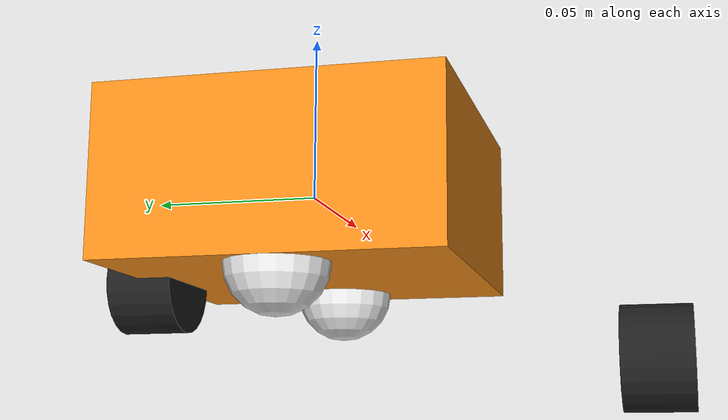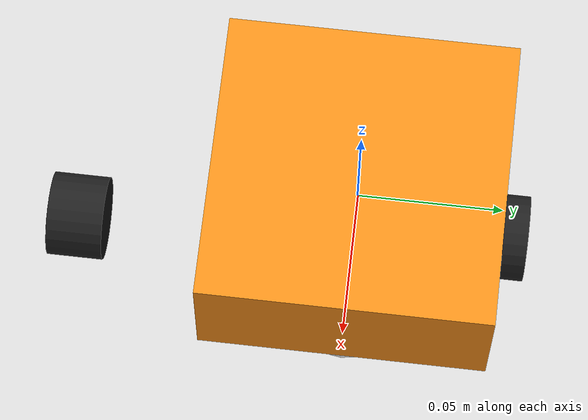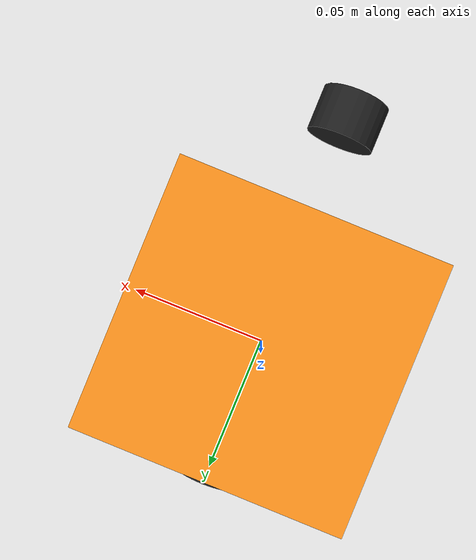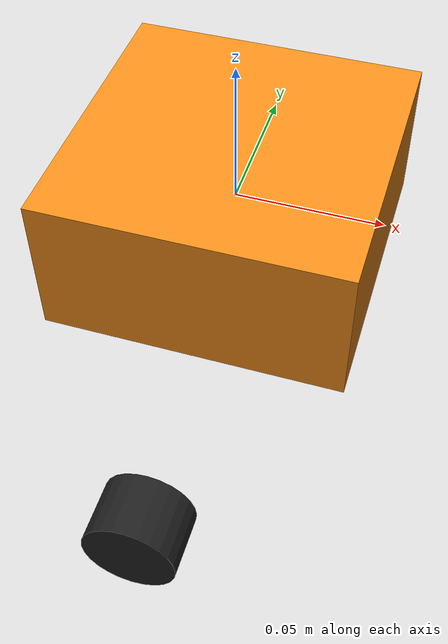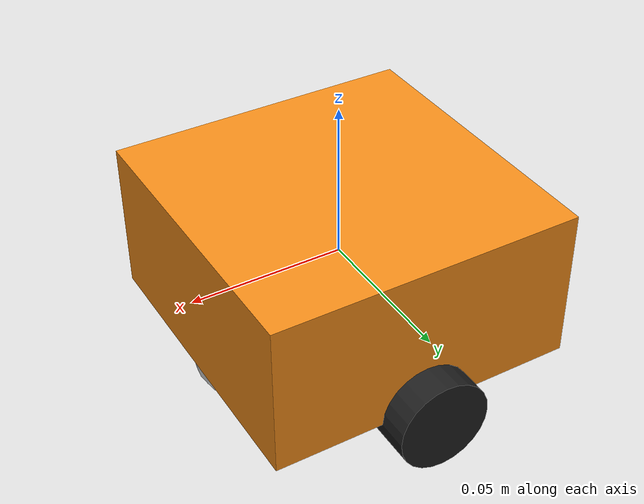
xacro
<?xml version="1.0"?>

<robot xmlns:xacro="http://www.ros.org/wiki/xacro" name="racecar">
  <xacro:arg name="use_sim" default="false" />

  <!-- Enable setting arguments from the launch file -->
  <xacro:arg name="use_fake_hardware" default="true" />
  <xacro:arg name="fake_sensor_commands" default="false" />
  <xacro:arg name="prefix" default="" />

  <xacro:include filename="$(find f1tenth_gym_ros)/description/racecar.urdf.xacro" />

  <!-- Import all Gazebo-customization elements, including Gazebo colors -->
  <xacro:include filename="$(find f1tenth_gym_ros)/description/racecar.gazebo.xacro" />

  <!-- Import Rviz colors -->
  <xacro:include filename="$(find f1tenth_gym_ros)/description/racecar.materials.xacro" />

  <!-- Import racecar ros2_control description -->
  <xacro:include filename="$(find f1tenth_gym_ros)/description/racecar.ros2_control.xacro" />

  <xacro:racecar prefix="$(arg prefix)" />

  <xacro:racecar_gazebo prefix="$(arg prefix)" />

  <xacro:racecar_system
    name="racecarSystem" prefix="$(arg prefix)"
    use_fake_hardware="$(arg use_fake_hardware)"
    fake_sensor_commands="$(arg fake_sensor_commands)"/>

</robot>

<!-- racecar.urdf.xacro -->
<robot xmlns:xacro="http://www.ros.org/wiki/xacro">

  <xacro:macro name="racecar" params="prefix">

   <!-- Constants for robot dimensions -->
    <xacro:property name="PI" value="3.1415926535897931"/>
    <xacro:property name="base_mass" value="0.3" /> <!-- arbitrary value for base mass -->
    <xacro:property name="base_width" value="0.1" />
    <xacro:property name="base_length" value="0.1" />
    <xacro:property name="base_height" value="0.05" />
    <xacro:property name="wheel_mass" value="0.3" /> <!-- arbitrary value for wheel mass -->
    <xacro:property name="wheel_len" value="0.020" />
    <xacro:property name="wheel_radius" value="0.015" />
    <xacro:property name="caster_wheel_mass" value="0.1" /> <!-- arbitrary value for caster wheel mass -->
    <xacro:property name="caster_wheel_radius" value="0.015" />
    <xacro:property name="z_offset" value="-${base_height/2}" /> <!-- Space btw top of beam and the each joint -->

    <link name="dummy"/>

    <joint name="dummy_joint" type="fixed">
     <parent link="dummy"/>
     <child link="base_link"/>
   </joint>

    <!-- Base Link -->
    <link name="${prefix}base_link">
      <collision>
        <origin xyz="0 0 0" rpy="0 0 0"/>
        <geometry>
          <box size="${base_width} ${base_length} ${base_height}"/>
        </geometry>
      </collision>

      <visual>
        <origin xyz="0 0 0" rpy="0 0 0"/>
        <geometry>
          <box size="${base_width} ${base_length} ${base_height}"/>
        </geometry>
        <material name="orange"/>
      </visual>

      <inertial>
        <origin xyz="0 0 0" rpy="0 0 0"/>
        <mass value="${base_mass}"/>
        <inertia
          ixx="${base_mass / 12.0 * (base_length*base_length + base_height*base_height)}" ixy="0.0" ixz="0.0"
          iyy="${base_mass / 12.0 * (base_height*base_height + base_width*base_width)}" iyz="0.0"
          izz="${base_mass / 12.0 * (base_width*base_width + base_length*base_length)}"/>
      </inertial>
    </link>

    <joint name="${prefix}left_wheel_joint" type="fixed">
      <parent link="${prefix}base_link"/>
      <child link="${prefix}left_wheel"/>
      <origin xyz="0 -${base_width/2} ${z_offset}" rpy="0 0 0"/>
    </joint>

      <!-- left wheel Link -->
    <link name="${prefix}left_wheel">
      <collision>
        <origin xyz="0 -${base_width/2} ${z_offset}" rpy="${PI/2} 0 0"/>
        <geometry>
          <cylinder length="${wheel_len}" radius="${wheel_radius}"/>
        </geometry>
      </collision>

      <visual>
        <origin xyz="0 -${base_width/2} ${z_offset}" rpy="${PI/2} 0 0"/>
        <geometry>
          <cylinder length="${wheel_len}" radius="${wheel_radius}"/>
        </geometry>
        <material name="black"/>
      </visual>

      <inertial>
        <origin xyz="0 -${base_width/2} ${z_offset}" rpy="${PI/2} 0 0"/>
        <mass value="${wheel_mass}"/>
        <inertia
          ixx="${wheel_mass / 12.0 * (3*wheel_radius + wheel_len*wheel_len)}" ixy="0.0" ixz="0.0"
          iyy="${wheel_mass / 12.0 * wheel_radius*wheel_radius}" iyz="0.0"
          izz="${wheel_mass / 12.0 * wheel_radius*wheel_radius}"/>
      </inertial>
    </link>

    <joint name="${prefix}right_wheel_joint" type="continuous">
      <parent link="${prefix}base_link"/>
      <child link="${prefix}right_wheel"/>
      <origin xyz="0 ${base_width/2} ${z_offset}" rpy="0 0 0"/>
      <axis xyz="0 1 0"/>
      <dynamics damping="0.2"/>
    </joint>

      <!-- right wheel Link -->
    <link name="${prefix}right_wheel">
      <collision>
        <origin xyz="0 0 0" rpy="${PI/2} 0 0"/>
        <geometry>
          <cylinder length="${wheel_len}" radius="${wheel_radius}"/>
        </geometry>
      </collision>

      <visual>
        <origin xyz="0 0 0" rpy="${PI/2} 0 0"/>
        <geometry>
          <cylinder length="${wheel_len}" radius="${wheel_radius}"/>
        </geometry>
        <material name="black"/>
      </visual>

      <inertial>
        <origin xyz="0 0 0" rpy="${PI/2} 0 0"/>
        <mass value="${wheel_mass}"/>
        <inertia
          ixx="${wheel_mass / 12.0 * (3*wheel_radius + wheel_len*wheel_len)}" ixy="0.0" ixz="0.0"
          iyy="${wheel_mass / 12.0 * wheel_radius*wheel_radius}" iyz="0.0"
          izz="${wheel_mass / 12.0 * wheel_radius*wheel_radius}"/>
      </inertial>
    </link>

    <joint name="${prefix}caster_frontal_wheel_joint" type="fixed">
      <parent link="${prefix}base_link"/>
      <child link="${prefix}caster_frontal_wheel"/>
      <origin xyz="${base_width/2 - caster_wheel_radius} 0 ${z_offset}" rpy="0 0 0"/>
    </joint>

    <link name="${prefix}caster_frontal_wheel">
      <collision>
        <origin xyz="0 0 0" rpy="0 0 0"/>
        <geometry>
          <sphere radius="${caster_wheel_radius}"/>
        </geometry>
      </collision>

      <visual>
        <origin xyz="0 0 0" rpy="0 0 0"/>
        <geometry>
          <sphere radius="${caster_wheel_radius}"/>
        </geometry>
        <material name="white"/>
      </visual>

      <inertial>
        <origin xyz="0 0 0" rpy="0 0 0"/>
        <mass value="${caster_wheel_mass}"/>
        <inertia
          ixx="${caster_wheel_mass * 0.4 * (caster_wheel_radius * caster_wheel_radius)}" ixy="0.0" ixz="0.0"
          iyy="${caster_wheel_mass * 0.4 * (caster_wheel_radius * caster_wheel_radius)}" iyz="0.0"
          izz="${caster_wheel_mass * 0.4 * (caster_wheel_radius * caster_wheel_radius)}"/>
      </inertial>
    </link>

    <joint name="${prefix}caster_rear_wheel_joint" type="fixed">
      <parent link="${prefix}base_link"/>
      <child link="${prefix}caster_rear_wheel"/>
      <origin xyz="${-base_width/2 + caster_wheel_radius} 0 ${z_offset}" rpy="0 0 0"/>
    </joint>

    <link name="${prefix}caster_rear_wheel">
      <collision>
        <origin xyz="0 0 0" rpy="0 0 0"/>
        <geometry>
          <sphere radius="${caster_wheel_radius}"/>
        </geometry>
      </collision>

      <visual>
        <origin xyz="0 0 0" rpy="0 0 0"/>
        <geometry>
          <sphere radius="${caster_wheel_radius}"/>
        </geometry>
        <material name="white"/>
      </visual>

      <inertial>
        <origin xyz="0 0 0" rpy="0 0 0"/>
        <mass value="${caster_wheel_mass}"/>
        <inertia
          ixx="${caster_wheel_mass * 0.4 * (caster_wheel_radius * caster_wheel_radius)}" ixy="0.0" ixz="0.0"
          iyy="${caster_wheel_mass * 0.4 * (caster_wheel_radius * caster_wheel_radius)}" iyz="0.0"
          izz="${caster_wheel_mass * 0.4 * (caster_wheel_radius * caster_wheel_radius)}"/>
      </inertial>
    </link>

  </xacro:macro>

</robot>
